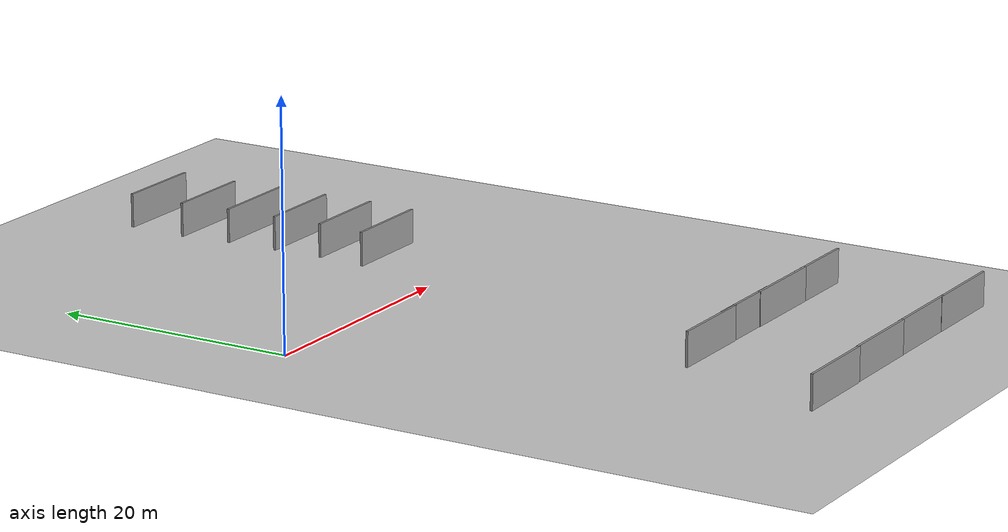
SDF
<sdf version="1.6">
 <world name="default">
  <model name="ground_plane">
   <static>1</static>
   <link name="link">
    <collision name="collision">
     <geometry><plane><normal>0 0 1</normal><size>100 100</size></plane></geometry>
     <surface>
      <contact><collide_bitmask>65535</collide_bitmask></contact>
      <friction><ode><mu>100</mu><mu2>50</mu2></ode></friction>
     </surface>
    </collision>
    <visual name="visual">
     <cast_shadows>0</cast_shadows>
     <geometry><plane><normal>0 0 1</normal><size>100 100</size></plane></geometry>
     <material>
      <script><uri>file://media/materials/scripts/gazebo.material</uri><name>Gazebo/Grey</name></script>
     </material>
    </visual>
   </link>
  </model>
  <light name="sun" type="directional">
   <pose>0 0 10 0 -0 0</pose>
   <diffuse>0.8 0.8 0.8 1</diffuse>
   <specular>0.2 0.2 0.2 1</specular>
   <attenuation>
    <range>1000</range>
    <constant>0.9</constant>
    <linear>0.01</linear>
    <quadratic>0.001</quadratic>
   </attenuation>
   <direction>-0.5 0.1 -0.9</direction>
  </light>
  <gravity>0 0 -9.8</gravity>
  <magnetic_field>6e-06 2.3e-05 -4.2e-05</magnetic_field>
  <atmosphere type="adiabatic"/>
  <physics name="default_physics" default="0" type="ode">
   <max_step_size>0.001</max_step_size>
   <real_time_factor>1</real_time_factor>
   <real_time_update_rate>1000</real_time_update_rate>
  </physics>
  <scene><ambient>0.4 0.4 0.4 1</ambient><background>0.7 0.7 0.7 1</background><shadows>1</shadows></scene>
  <spherical_coordinates>
   <surface_model>EARTH_WGS84</surface_model>
   <latitude_deg>0</latitude_deg>
   <longitude_deg>0</longitude_deg>
   <elevation>0</elevation>
   <heading_deg>0</heading_deg>
  </spherical_coordinates>
  <model name="grey_wall">
   <static>1</static>
   <link name="link">
    <pose>0 0 1.4 0 -0 0</pose>
    <collision name="collision"><geometry><box><size>7.5 0.2 2.8</size></box></geometry></collision>
    <visual name="visual">
     <cast_shadows>0</cast_shadows>
     <geometry><box><size>7.5 0.2 2.8</size></box></geometry>
     <material>
      <script>
       <uri>model://grey_wall/materials/scripts</uri>
       <uri>model://grey_wall/materials/textures</uri>
       <name>vrc/grey_wall</name>
      </script>
     </material>
    </visual>
   </link>
   <pose>12.7501 -39.172 0 0 -0 0</pose>
  </model>
  <model name="grey_wall_0">
   <static>1</static>
   <link name="link">
    <pose>0 0 1.4 0 -0 0</pose>
    <collision name="collision"><geometry><box><size>7.5 0.2 2.8</size></box></geometry></collision>
    <visual name="visual">
     <cast_shadows>0</cast_shadows>
     <geometry><box><size>7.5 0.2 2.8</size></box></geometry>
     <material>
      <script>
       <uri>model://grey_wall/materials/scripts</uri>
       <uri>model://grey_wall/materials/textures</uri>
       <name>vrc/grey_wall</name>
      </script>
     </material>
    </visual>
   </link>
   <pose>20.0952 -39.1139 0 0 -0 0</pose>
  </model>
  <model name="grey_wall_1">
   <static>1</static>
   <link name="link">
    <pose>0 0 1.4 0 -0 0</pose>
    <collision name="collision"><geometry><box><size>7.5 0.2 2.8</size></box></geometry></collision>
    <visual name="visual">
     <cast_shadows>0</cast_shadows>
     <geometry><box><size>7.5 0.2 2.8</size></box></geometry>
     <material>
      <script>
       <uri>model://grey_wall/materials/scripts</uri>
       <uri>model://grey_wall/materials/textures</uri>
       <name>vrc/grey_wall</name>
      </script>
     </material>
    </visual>
   </link>
   <pose>26.8863 -39.0935 0 0 -0 0</pose>
  </model>
  <model name="grey_wall_2">
   <static>1</static>
   <link name="link">
    <pose>0 0 1.4 0 -0 0</pose>
    <collision name="collision"><geometry><box><size>7.5 0.2 2.8</size></box></geometry></collision>
    <visual name="visual">
     <cast_shadows>0</cast_shadows>
     <geometry><box><size>7.5 0.2 2.8</size></box></geometry>
     <material>
      <script>
       <uri>model://grey_wall/materials/scripts</uri>
       <uri>model://grey_wall/materials/textures</uri>
       <name>vrc/grey_wall</name>
      </script>
     </material>
    </visual>
   </link>
   <pose>34.0832 -39.1103 0 0 -0 0</pose>
  </model>
  <model name="grey_wall_3">
   <static>1</static>
   <link name="link">
    <pose>0 0 1.4 0 -0 0</pose>
    <collision name="collision"><geometry><box><size>7.5 0.2 2.8</size></box></geometry></collision>
    <visual name="visual">
     <cast_shadows>0</cast_shadows>
     <geometry><box><size>7.5 0.2 2.8</size></box></geometry>
     <material>
      <script>
       <uri>model://grey_wall/materials/scripts</uri>
       <uri>model://grey_wall/materials/textures</uri>
       <name>vrc/grey_wall</name>
      </script>
     </material>
    </visual>
   </link>
   <pose>16.7509 -26.8083 0 0 -0 0</pose>
  </model>
  <model name="grey_wall_4">
   <static>1</static>
   <link name="link">
    <pose>0 0 1.4 0 -0 0</pose>
    <collision name="collision"><geometry><box><size>7.5 0.2 2.8</size></box></geometry></collision>
    <visual name="visual">
     <cast_shadows>0</cast_shadows>
     <geometry><box><size>7.5 0.2 2.8</size></box></geometry>
     <material>
      <script>
       <uri>model://grey_wall/materials/scripts</uri>
       <uri>model://grey_wall/materials/textures</uri>
       <name>vrc/grey_wall</name>
      </script>
     </material>
    </visual>
   </link>
   <pose>22.2327 -26.7643 0 0 -0 0</pose>
  </model>
  <model name="grey_wall_5">
   <static>1</static>
   <link name="link">
    <pose>0 0 1.4 0 -0 0</pose>
    <collision name="collision"><geometry><box><size>7.5 0.2 2.8</size></box></geometry></collision>
    <visual name="visual">
     <cast_shadows>0</cast_shadows>
     <geometry><box><size>7.5 0.2 2.8</size></box></geometry>
     <material>
      <script>
       <uri>model://grey_wall/materials/scripts</uri>
       <uri>model://grey_wall/materials/textures</uri>
       <name>vrc/grey_wall</name>
      </script>
     </material>
    </visual>
   </link>
   <pose>28.1624 -26.8094 0 0 -0 0</pose>
  </model>
  <model name="grey_wall_6">
   <static>1</static>
   <link name="link">
    <pose>0 0 1.4 0 -0 0</pose>
    <collision name="collision"><geometry><box><size>7.5 0.2 2.8</size></box></geometry></collision>
    <visual name="visual">
     <cast_shadows>0</cast_shadows>
     <geometry><box><size>7.5 0.2 2.8</size></box></geometry>
     <material>
      <script>
       <uri>model://grey_wall/materials/scripts</uri>
       <uri>model://grey_wall/materials/textures</uri>
       <name>vrc/grey_wall</name>
      </script>
     </material>
    </visual>
   </link>
   <pose>33.7205 -26.7991 0 0 -0 0</pose>
  </model>
  <model name="grey_wall_7">
   <static>1</static>
   <link name="link">
    <pose>0 0 1.4 0 -0 0</pose>
    <collision name="collision"><geometry><box><size>7.5 0.2 2.8</size></box></geometry></collision>
    <visual name="visual">
     <cast_shadows>0</cast_shadows>
     <geometry><box><size>7.5 0.2 2.8</size></box></geometry>
     <material>
      <script>
       <uri>model://grey_wall/materials/scripts</uri>
       <uri>model://grey_wall/materials/textures</uri>
       <name>vrc/grey_wall</name>
      </script>
     </material>
    </visual>
   </link>
   <pose>25.7479 7.43822 0 0 -0 0</pose>
  </model>
  <model name="grey_wall_8">
   <static>1</static>
   <link name="link">
    <pose>0 0 1.4 0 -0 0</pose>
    <collision name="collision"><geometry><box><size>7.5 0.2 2.8</size></box></geometry></collision>
    <visual name="visual">
     <cast_shadows>0</cast_shadows>
     <geometry><box><size>7.5 0.2 2.8</size></box></geometry>
     <material>
      <script>
       <uri>model://grey_wall/materials/scripts</uri>
       <uri>model://grey_wall/materials/textures</uri>
       <name>vrc/grey_wall</name>
      </script>
     </material>
    </visual>
   </link>
   <pose>25.9812 11.5245 0 0 -0 0</pose>
  </model>
  <model name="grey_wall_9">
   <static>1</static>
   <link name="link">
    <pose>0 0 1.4 0 -0 0</pose>
    <collision name="collision"><geometry><box><size>7.5 0.2 2.8</size></box></geometry></collision>
    <visual name="visual">
     <cast_shadows>0</cast_shadows>
     <geometry><box><size>7.5 0.2 2.8</size></box></geometry>
     <material>
      <script>
       <uri>model://grey_wall/materials/scripts</uri>
       <uri>model://grey_wall/materials/textures</uri>
       <name>vrc/grey_wall</name>
      </script>
     </material>
    </visual>
   </link>
   <pose>25.786 15.7354 0 0 -0 0</pose>
  </model>
  <model name="grey_wall_10">
   <static>1</static>
   <link name="link">
    <pose>0 0 1.4 0 -0 0</pose>
    <collision name="collision"><geometry><box><size>7.5 0.2 2.8</size></box></geometry></collision>
    <visual name="visual">
     <cast_shadows>0</cast_shadows>
     <geometry><box><size>7.5 0.2 2.8</size></box></geometry>
     <material>
      <script>
       <uri>model://grey_wall/materials/scripts</uri>
       <uri>model://grey_wall/materials/textures</uri>
       <name>vrc/grey_wall</name>
      </script>
     </material>
    </visual>
   </link>
   <pose>25.6624 20.0986 0 0 -0 0</pose>
  </model>
  <model name="grey_wall_11">
   <static>1</static>
   <link name="link">
    <pose>0 0 1.4 0 -0 0</pose>
    <collision name="collision"><geometry><box><size>7.5 0.2 2.8</size></box></geometry></collision>
    <visual name="visual">
     <cast_shadows>0</cast_shadows>
     <geometry><box><size>7.5 0.2 2.8</size></box></geometry>
     <material>
      <script>
       <uri>model://grey_wall/materials/scripts</uri>
       <uri>model://grey_wall/materials/textures</uri>
       <name>vrc/grey_wall</name>
      </script>
     </material>
    </visual>
   </link>
   <pose>25.1331 24.2684 0 0 -0 0</pose>
  </model>
  <model name="grey_wall_12">
   <static>1</static>
   <link name="link">
    <pose>0 0 1.4 0 -0 0</pose>
    <collision name="collision"><geometry><box><size>7.5 0.2 2.8</size></box></geometry></collision>
    <visual name="visual">
     <cast_shadows>0</cast_shadows>
     <geometry><box><size>7.5 0.2 2.8</size></box></geometry>
     <material>
      <script>
       <uri>model://grey_wall/materials/scripts</uri>
       <uri>model://grey_wall/materials/textures</uri>
       <name>vrc/grey_wall</name>
      </script>
     </material>
    </visual>
   </link>
   <pose>25.218 29.2432 0 0 -0 0</pose>
  </model>
 </world>
</sdf>
